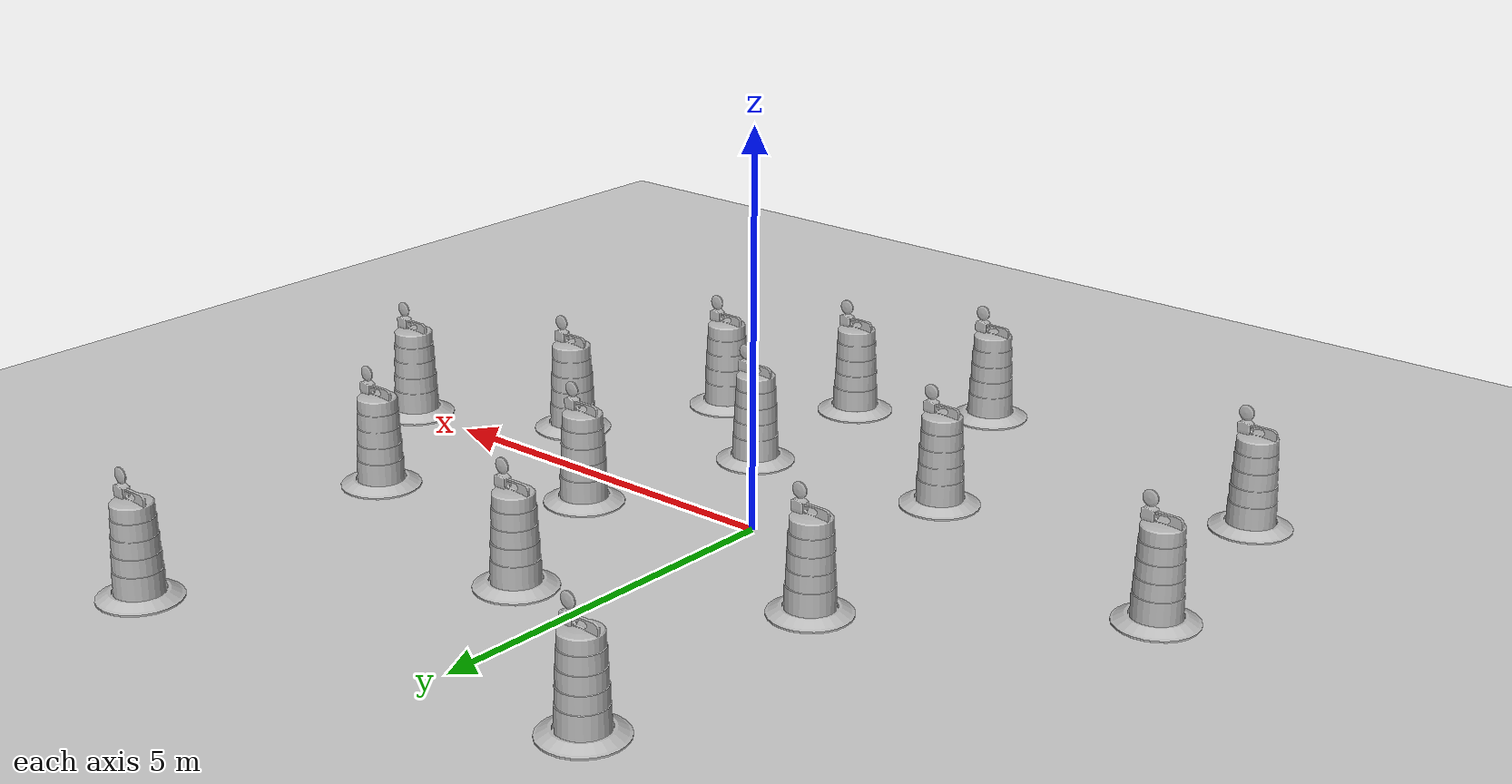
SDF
<sdf version="1.7">
 <world name="default">
  <light name="sun" type="directional">
   <pose>0 0 10 0 -0 0</pose>
   <diffuse>0.8 0.8 0.8 1</diffuse>
   <specular>0.2 0.2 0.2 1</specular>
   <attenuation>
    <range>1000</range>
    <constant>0.9</constant>
    <linear>0.01</linear>
    <quadratic>0.001</quadratic>
   </attenuation>
   <direction>-0.5 0.1 -0.9</direction>
   <spot><inner_angle>0</inner_angle><outer_angle>0</outer_angle><falloff>0</falloff></spot>
  </light>
  <model name="ground_plane">
   <static>1</static>
   <link name="link">
    <collision name="collision">
     <geometry><plane><normal>0 0 1</normal><size>100 100</size></plane></geometry>
     <surface>
      <contact><collide_bitmask>65535</collide_bitmask></contact>
      <friction><ode><mu>100</mu><mu2>50</mu2></ode></friction>
     </surface>
    </collision>
    <visual name="visual">
     <cast_shadows>0</cast_shadows>
     <geometry><plane><normal>0 0 1</normal><size>100 100</size></plane></geometry>
     <material>
      <script><uri>file://media/materials/scripts/gazebo.material</uri><name>Gazebo/Grey</name></script>
     </material>
    </visual>
   </link>
  </model>
  <gravity>0 0 -9.8</gravity>
  <magnetic_field>6e-06 2.3e-05 -4.2e-05</magnetic_field>
  <atmosphere type="adiabatic"/>
  <physics type="ode">
   <max_step_size>0.001</max_step_size>
   <real_time_factor>1</real_time_factor>
   <real_time_update_rate>1000</real_time_update_rate>
  </physics>
  <scene><ambient>0.4 0.4 0.4 1</ambient><background>0.7 0.7 0.7 1</background><shadows>1</shadows></scene>
  <audio><device>default</device></audio>
  <spherical_coordinates>
   <surface_model>EARTH_WGS84</surface_model>
   <latitude_deg>0</latitude_deg>
   <longitude_deg>0</longitude_deg>
   <elevation>0</elevation>
   <heading_deg>0</heading_deg>
  </spherical_coordinates>
  <model name="Construction Barrel">
   <link name="link">
    <inertial>
     <pose>0 0 0.4 0 -0 0</pose>
     <mass>500</mass>
     <inertia><ixx>51.2096</ixx><iyy>51.2096</iyy><izz>25</izz><ixy>0</ixy><ixz>0</ixz><iyz>0</iyz></inertia>
    </inertial>
    <collision name="collision">
     <geometry><mesh><uri>model://construction_barrel/meshes/construction_barrel.dae</uri></mesh></geometry>
    </collision>
    <visual name="visual">
     <geometry><mesh><uri>model://construction_barrel/meshes/construction_barrel.dae</uri></mesh></geometry>
    </visual>
   </link>
   <pose>-1.97308 1.33982 0 0 0 -2.4e-05</pose>
  </model>
  <model name="Construction Barrel_clone">
   <link name="link">
    <inertial>
     <pose>0 0 0.4 0 -0 0</pose>
     <mass>500</mass>
     <inertia><ixx>51.2096</ixx><iyy>51.2096</iyy><izz>25</izz><ixy>0</ixy><ixz>0</ixz><iyz>0</iyz></inertia>
    </inertial>
    <collision name="collision">
     <geometry><mesh><uri>model://construction_barrel/meshes/construction_barrel.dae</uri></mesh></geometry>
    </collision>
    <visual name="visual">
     <geometry><mesh><uri>model://construction_barrel/meshes/construction_barrel.dae</uri></mesh></geometry>
    </visual>
   </link>
   <pose>-1.25485 -2.10421 -1e-06 0 5e-06 -2.1e-05</pose>
  </model>
  <model name="Construction Barrel_clone_0">
   <link name="link">
    <inertial>
     <pose>0 0 0.4 0 -0 0</pose>
     <mass>500</mass>
     <inertia><ixx>51.2096</ixx><iyy>51.2096</iyy><izz>25</izz><ixy>0</ixy><ixz>0</ixz><iyz>0</iyz></inertia>
    </inertial>
    <collision name="collision">
     <geometry><mesh><uri>model://construction_barrel/meshes/construction_barrel.dae</uri></mesh></geometry>
    </collision>
    <visual name="visual">
     <geometry><mesh><uri>model://construction_barrel/meshes/construction_barrel.dae</uri></mesh></geometry>
    </visual>
   </link>
   <pose>1.5385 -4.00003 -2e-06 0 7e-06 -2.4e-05</pose>
  </model>
  <model name="Construction Barrel_clone_1">
   <link name="link">
    <inertial>
     <pose>0 0 0.4 0 -0 0</pose>
     <mass>500</mass>
     <inertia><ixx>51.2096</ixx><iyy>51.2096</iyy><izz>25</izz><ixy>0</ixy><ixz>0</ixz><iyz>0</iyz></inertia>
    </inertial>
    <collision name="collision">
     <geometry><mesh><uri>model://construction_barrel/meshes/construction_barrel.dae</uri></mesh></geometry>
    </collision>
    <visual name="visual">
     <geometry><mesh><uri>model://construction_barrel/meshes/construction_barrel.dae</uri></mesh></geometry>
    </visual>
   </link>
   <pose>2.99992 -3.00003 0 0 -0 -1.7e-05</pose>
  </model>
  <model name="Construction Barrel_clone_2">
   <link name="link">
    <inertial>
     <pose>0 0 0.4 0 -0 0</pose>
     <mass>500</mass>
     <inertia><ixx>51.2096</ixx><iyy>51.2096</iyy><izz>25</izz><ixy>0</ixy><ixz>0</ixz><iyz>0</iyz></inertia>
    </inertial>
    <collision name="collision">
     <geometry><mesh><uri>model://construction_barrel/meshes/construction_barrel.dae</uri></mesh></geometry>
    </collision>
    <visual name="visual">
     <geometry><mesh><uri>model://construction_barrel/meshes/construction_barrel.dae</uri></mesh></geometry>
    </visual>
   </link>
   <pose>0.999929 2.99997 -1e-06 4e-06 -1e-06 -1.6e-05</pose>
  </model>
  <model name="Construction Barrel_clone_3">
   <link name="link">
    <inertial>
     <pose>0 0 0.4 0 -0 0</pose>
     <mass>500</mass>
     <inertia><ixx>51.2096</ixx><iyy>51.2096</iyy><izz>25</izz><ixy>0</ixy><ixz>0</ixz><iyz>0</iyz></inertia>
    </inertial>
    <collision name="collision">
     <geometry><mesh><uri>model://construction_barrel/meshes/construction_barrel.dae</uri></mesh></geometry>
    </collision>
    <visual name="visual">
     <geometry><mesh><uri>model://construction_barrel/meshes/construction_barrel.dae</uri></mesh></geometry>
    </visual>
   </link>
   <pose>3.99993 -1.00002 -1e-06 4e-06 -2e-06 -1.7e-05</pose>
  </model>
  <model name="Construction Barrel_clone_4">
   <link name="link">
    <inertial>
     <pose>0 0 0.4 0 -0 0</pose>
     <mass>500</mass>
     <inertia><ixx>51.2096</ixx><iyy>51.2096</iyy><izz>25</izz><ixy>0</ixy><ixz>0</ixz><iyz>0</iyz></inertia>
    </inertial>
    <collision name="collision">
     <geometry><mesh><uri>model://construction_barrel/meshes/construction_barrel.dae</uri></mesh></geometry>
    </collision>
    <visual name="visual">
     <geometry><mesh><uri>model://construction_barrel/meshes/construction_barrel.dae</uri></mesh></geometry>
    </visual>
   </link>
   <pose>4.45279 1.99998 -1e-06 2e-06 -1e-06 -1.6e-05</pose>
  </model>
  <model name="Construction Barrel_clone_5">
   <link name="link">
    <inertial>
     <pose>0 0 0.4 0 -0 0</pose>
     <mass>500</mass>
     <inertia><ixx>51.2096</ixx><iyy>51.2096</iyy><izz>25</izz><ixy>0</ixy><ixz>0</ixz><iyz>0</iyz></inertia>
    </inertial>
    <collision name="collision">
     <geometry><mesh><uri>model://construction_barrel/meshes/construction_barrel.dae</uri></mesh></geometry>
    </collision>
    <visual name="visual">
     <geometry><mesh><uri>model://construction_barrel/meshes/construction_barrel.dae</uri></mesh></geometry>
    </visual>
   </link>
   <pose>-5.00005 -1.00002 -1e-06 0 5e-06 -1.4e-05</pose>
  </model>
  <model name="Construction Barrel_clone_6">
   <link name="link">
    <inertial>
     <pose>0 0 0.4 0 -0 0</pose>
     <mass>500</mass>
     <inertia><ixx>51.2096</ixx><iyy>51.2096</iyy><izz>25</izz><ixy>0</ixy><ixz>0</ixz><iyz>0</iyz></inertia>
    </inertial>
    <collision name="collision">
     <geometry><mesh><uri>model://construction_barrel/meshes/construction_barrel.dae</uri></mesh></geometry>
    </collision>
    <visual name="visual">
     <geometry><mesh><uri>model://construction_barrel/meshes/construction_barrel.dae</uri></mesh></geometry>
    </visual>
   </link>
   <pose>-2.00005 4.99998 0 0 0 -1.3e-05</pose>
  </model>
  <model name="Construction Barrel_clone_7">
   <link name="link">
    <inertial>
     <pose>0 0 0.4 0 -0 0</pose>
     <mass>500</mass>
     <inertia><ixx>51.2096</ixx><iyy>51.2096</iyy><izz>25</izz><ixy>0</ixy><ixz>0</ixz><iyz>0</iyz></inertia>
    </inertial>
    <collision name="collision">
     <geometry><mesh><uri>model://construction_barrel/meshes/construction_barrel.dae</uri></mesh></geometry>
    </collision>
    <visual name="visual">
     <geometry><mesh><uri>model://construction_barrel/meshes/construction_barrel.dae</uri></mesh></geometry>
    </visual>
   </link>
   <pose>-4.8e-05 -5.00002 0 0 -0 -1e-05</pose>
  </model>
  <model name="Construction Barrel_clone_8">
   <link name="link">
    <inertial>
     <pose>0 0 0.4 0 -0 0</pose>
     <mass>500</mass>
     <inertia><ixx>51.2096</ixx><iyy>51.2096</iyy><izz>25</izz><ixy>0</ixy><ixz>0</ixz><iyz>0</iyz></inertia>
    </inertial>
    <collision name="collision">
     <geometry><mesh><uri>model://construction_barrel/meshes/construction_barrel.dae</uri></mesh></geometry>
    </collision>
    <visual name="visual">
     <geometry><mesh><uri>model://construction_barrel/meshes/construction_barrel.dae</uri></mesh></geometry>
    </visual>
   </link>
   <pose>5.99996 -1.4e-05 -1e-06 4e-06 -1e-06 -9e-06</pose>
  </model>
  <model name="Construction Barrel_clone_9">
   <link name="link">
    <inertial>
     <pose>0 0 0.4 0 -0 0</pose>
     <mass>500</mass>
     <inertia><ixx>51.2096</ixx><iyy>51.2096</iyy><izz>25</izz><ixy>0</ixy><ixz>0</ixz><iyz>0</iyz></inertia>
    </inertial>
    <collision name="collision">
     <geometry><mesh><uri>model://construction_barrel/meshes/construction_barrel.dae</uri></mesh></geometry>
    </collision>
    <visual name="visual">
     <geometry><mesh><uri>model://construction_barrel/meshes/construction_barrel.dae</uri></mesh></geometry>
    </visual>
   </link>
   <pose>3.99996 5.99999 -1e-06 4e-06 -2e-06 -1e-05</pose>
  </model>
  <model name="Construction Barrel_clone_10">
   <link name="link">
    <inertial>
     <pose>0 0 0.4 0 -0 0</pose>
     <mass>500</mass>
     <inertia><ixx>51.2096</ixx><iyy>51.2096</iyy><izz>25</izz><ixy>0</ixy><ixz>0</ixz><iyz>0</iyz></inertia>
    </inertial>
    <collision name="collision">
     <geometry><mesh><uri>model://construction_barrel/meshes/construction_barrel.dae</uri></mesh></geometry>
    </collision>
    <visual name="visual">
     <geometry><mesh><uri>model://construction_barrel/meshes/construction_barrel.dae</uri></mesh></geometry>
    </visual>
   </link>
   <pose>-4.50957 -4.00001 -1e-06 2e-06 -1e-06 -9e-06</pose>
  </model>
  <model name="Construction Barrel_clone_11">
   <link name="link">
    <inertial>
     <pose>0 0 0.4 0 -0 0</pose>
     <mass>500</mass>
     <inertia><ixx>51.2096</ixx><iyy>51.2096</iyy><izz>25</izz><ixy>0</ixy><ixz>0</ixz><iyz>0</iyz></inertia>
    </inertial>
    <collision name="collision">
     <geometry><mesh><uri>model://construction_barrel/meshes/construction_barrel.dae</uri></mesh></geometry>
    </collision>
    <visual name="visual">
     <geometry><mesh><uri>model://construction_barrel/meshes/construction_barrel.dae</uri></mesh></geometry>
    </visual>
   </link>
   <pose>1.40638 -1.72343 -1e-06 0 5e-06 -7e-06</pose>
  </model>
  <model name="Construction Barrel_clone_12">
   <link name="link">
    <inertial>
     <pose>0 0 0.4 0 -0 0</pose>
     <mass>500</mass>
     <inertia><ixx>51.2096</ixx><iyy>51.2096</iyy><izz>25</izz><ixy>0</ixy><ixz>0</ixz><iyz>0</iyz></inertia>
    </inertial>
    <collision name="collision">
     <geometry><mesh><uri>model://construction_barrel/meshes/construction_barrel.dae</uri></mesh></geometry>
    </collision>
    <visual name="visual">
     <geometry><mesh><uri>model://construction_barrel/meshes/construction_barrel.dae</uri></mesh></geometry>
    </visual>
   </link>
   <pose>2.1306 0.717219 -1e-06 4e-06 -2e-06 -6e-06</pose>
  </model>
 </world>
</sdf>
